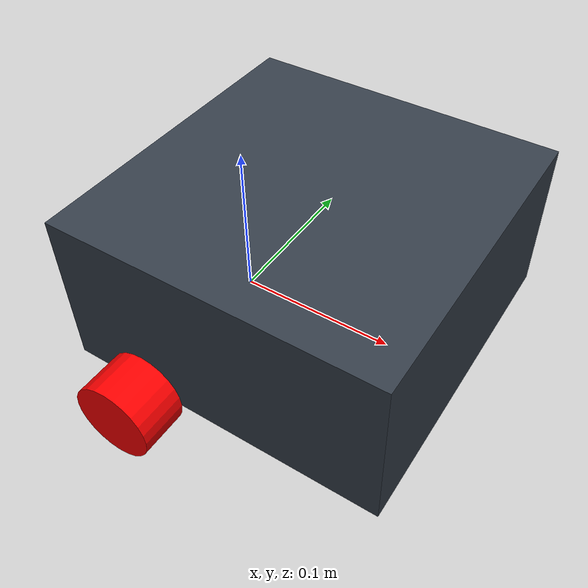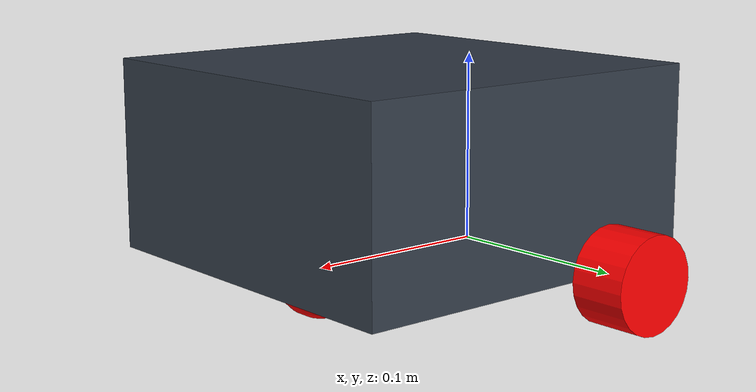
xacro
<?xml version="1.0"?>
<robot xmlns:xacro="http://www.ros.org/wiki/xacro">

    <xacro:include filename="inertial_macros.xacro"/>

    <!--COLORS -->
    <material name="blue">
        <color rgba="0.203125 0.23828125 0.28515625 1.0"/>
    </material>

    <material name="red">
        <color rgba="1 0.0 0.0 1.0"/>
    </material>

    <material name="white">
        <color rgba="1.0 1.0 1.0 1.0"/>
    </material>

    <!-- BASE LINK -->
    <link name="base_link"/>

    <!-- CHASSIS -->
    <joint name="chassis_joint" type="fixed">
        <parent link="base_link"/>
        <child link="chassis"/>
        <origin xyz="-0.05 0.0 0.0"/>
    </joint>

    <link name="chassis">
        <visual>
            <origin xyz="0.1 0.0 0.05" rpy="0.0 0.0 0.0"/>
            <geometry>
                <box size="0.2 0.2 0.1"/>
            </geometry>
            <material name="blue" />
        </visual>
        <collision>
            <origin xyz="0.1 0.0 0.05" rpy="0.0 0.0 0.0"/>
            <geometry>
                <box size="0.2 0.2 0.1"/>
            </geometry>
        </collision>
        <xacro:inertial_box mass="0.5" x="0.2" y="0.2" z="0.1">
            <origin xyz="0.1 0.0 0.05" rpy="0.0 0.0 0.0"/>
        </xacro:inertial_box>
    </link>

    <gazebo reference="chassis">
        <material>Gazebo/Blue</material>
    </gazebo>

    <!-- WHEELS -->

    <!-- LEFT WHEEL -->
    <joint name="left_wheel_joint" type="continuous">
        <parent link="base_link"/>
        <child link="left_wheel"/>
        <origin xyz="0.0 0.115 0.0" rpy="-1.57079633 0.0 0.0"/>
        <axis xyz="0 0 1"/>
    </joint>

    <link name="left_wheel">
        <visual>
            <geometry>
                <cylinder radius="0.025" length="0.03"/>
            </geometry>
            <material name="red" />
        </visual>
        <collision>
            <geometry>
                <cylinder radius="0.025" length="0.03"/>
            </geometry>
        </collision>
        <xacro:inertial_cylinder mass="0.2" length="0.03" radius="0.025">
            <origin xyz="0.0 0.0 0.0" rpy="0.0 0.0 0.0"/>
        </xacro:inertial_cylinder>
    </link>

    <transmission name="left_wheel_transmission">
        <type>transmission_interface/SimpleTransmission</type>
        <joint name="left_wheel_joint">
            <hardwareInterface>hardware_interface/VelocityJointInterface</hardwareInterface>
        </joint>
        <actuator name="left_wheel_actuator">
            <mechanicalReduction>7</mechanicalReduction>
            <hardwareInterface>VelocityJointInterface</hardwareInterface>
        </actuator>
    </transmission>

    <gazebo reference="left_wheel">
        <material>Gazebo/Red</material>
        <mu1 value="1"/>
        <mu2 value="1"/>
    </gazebo>

    <!-- RIGHT WHEEL -->
    <joint name="right_wheel_joint" type="continuous">
        <parent link="base_link"/>
        <child link="right_wheel"/>
        <origin xyz="0.0 -0.115 0.0" rpy="1.57079633 0.0 0.0"/>
        <axis xyz="0 0 -1"/>
    </joint>

    <link name="right_wheel">
        <visual>
            <geometry>
                <cylinder radius="0.025" length="0.03"/>
            </geometry>
            <material name="red" />
        </visual>
        <collision>
            <geometry>
                <cylinder radius="0.025" length="0.03"/>
            </geometry>
        </collision>
        <xacro:inertial_cylinder mass="0.2" length="0.03" radius="0.025">
            <origin xyz="0.0 0.0 0.0" rpy="0.0 0.0 0.0"/>
        </xacro:inertial_cylinder>
    </link>

    <transmission name="right_wheel_transmission">
        <type>transmission_interface/SimpleTransmission</type>
        <joint name="right_wheel_joint">
            <hardwareInterface>hardware_interface/VelocityJointInterface</hardwareInterface>
        </joint>
        <actuator name="right_wheel_actuator">
            <mechanicalReduction>7</mechanicalReduction>
            <hardwareInterface>VelocityJointInterface</hardwareInterface>
        </actuator>
    </transmission>

    <gazebo reference="right_wheel">
        <material>Gazebo/Red</material>
        <mu1 value="1"/>
        <mu2 value="1"/>
    </gazebo>

    <!-- CASTER WHEEL -->
    <joint name="caster_wheel_joint" type="fixed">
        <parent link="chassis"/>
        <child link="caster_wheel"/>
        <origin xyz="0.15 0.0 0.0"/>
    </joint>

    <link name="caster_wheel">
        <visual>
            <geometry>
                <sphere radius="0.025"/>
            </geometry>
            <material name="red" />
        </visual>
        <collision>
            <geometry>
                <sphere radius="0.025"/>
            </geometry>
        </collision>
        <xacro:inertial_sphere mass="0.2" radius="0.025">
            <origin xyz="0.0 0.0 0.0" rpy="0.0 0.0 0.0"/>
        </xacro:inertial_sphere>
    </link>

    <gazebo reference="caster_wheel">
        <material>Gazebo/Red</material>
        <mu1 value="0.001"/>
        <mu2 value="0.001"/>
    </gazebo>

    <gazebo>
        <plugin name="gazebo_ros_control" filename="libgazebo_ros_control.so" >
        </plugin>
    </gazebo>
</robot>
